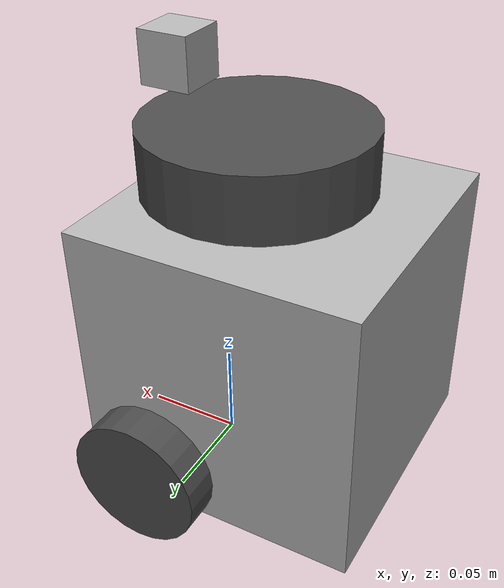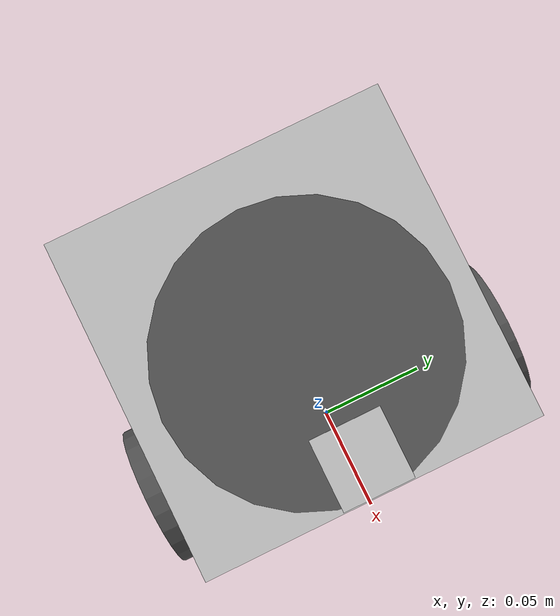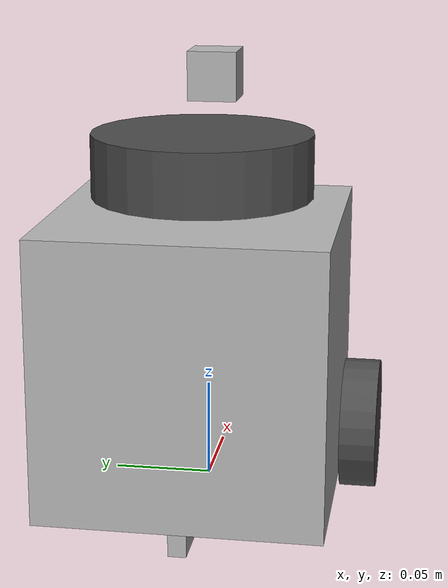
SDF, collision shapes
<?xml version="1.0" ?>
<sdf version="1.7">

    <model name="Turtlebot3_Burger" canonical_link='base_footprint'>

        <pose>0 0 0.01 0 0 0</pose>

        <link name="base_footprint"/>

        <joint name="base_joint" type="fixed">
            <parent>base_footprint</parent>
            <child>base_link</child>
            <pose>0.0 0.0 0.010 0 0 0</pose>
        </joint>

        <link name="base_link">
            <inertial>
                <pose>-0.032 0 0.070 0 0 0</pose>
                <inertia>
                <ixx>2.2124416e-03</ixx>
                <ixy>-1.2294101e-05</ixy>
                <ixz>3.4938785e-05</ixz>
                <iyy>2.1193702e-03</iyy>
                <iyz>-5.0120904e-06</iyz>
                <izz>2.0064271e-03</izz>
                </inertia>
                <mass>8.2573504e-01</mass>
            </inertial>

            <collision name="base_collision">
                <pose>-0.032 0 0.070 0 0 0</pose>
                <geometry>
                <box>
                    <size>0.140 0.140 0.140</size>
                </box>
                </geometry>
            </collision>

            <visual name="base_visual">
                <pose>-0.032 0 0 0 0 0</pose>
                <geometry>
                <mesh>
                    <uri>meshes/burger_base.dae</uri>
                    <scale>0.001 0.001 0.001</scale>
                </mesh>
                <material>
                    <ambient>0.0 0.4 0.0 1.0</ambient>
                    <diffuse>0.0 0.4 0.0 1.0</diffuse>
                    <specular>0.0 0.4 0.0 1.0</specular>
                </material>
                </geometry>
            </visual>
        </link>

        <joint name="wheel_left_joint" type="revolute">
            <parent>base_link</parent>
            <child>wheel_left_link</child>
            <pose>0 0.08 0.023 -1.57 0 0</pose>
            <axis>
                <xyz expressed_in='__model__'>0 1 0</xyz> <!--can be defined as any frame or even arbitrary frames-->
            </axis>
        </joint>

        <link name="wheel_left_link">
            <inertial>
                <pose>0 0.08 0.023 -1.57 0 0</pose>
                <inertia>
                    <ixx>1.1175580e-05</ixx>
                    <ixy>-4.2369783e-11</ixy>
                    <ixz>-5.9381719e-09</ixz>
                    <iyy>1.1192413e-05</iyy>
                    <iyz>-1.4400107e-11</iyz>
                    <izz>2.0712558e-05</izz>
                </inertia>
                <mass>2.8498940e-02</mass>
            </inertial>

            <collision name="wheel_left_collision">
                <pose>0 0.08 0.023 -1.57 0 0</pose>
                <geometry>
                <cylinder>
                    <radius>0.033</radius>
                    <length>0.018</length>
                </cylinder>
                </geometry>
                <surface>
                <!-- This friction pamareter don't contain reliable data!! -->
                    <friction>
                    <ode>
                        <mu>100000.0</mu>
                        <mu2>100000.0</mu2>
                        <fdir1>0 0 0</fdir1>
                        <slip1>0.0</slip1>
                        <slip2>0.0</slip2>
                    </ode>
                </friction>
                </surface>
            </collision>

            <visual name="wheel_left_visual">
                <pose>0 0.08 0.023 0 0 0</pose>
                <geometry>
                    <mesh>
                        <uri>meshes/left_tire.dae</uri>
                        <scale>0.001 0.001 0.001</scale>
                    </mesh>
                </geometry>
                <material>
                    <ambient>0.3 0.3 0.3 1.0</ambient>
                    <diffuse>0.3 0.3 0.3 1.0</diffuse>
                    <specular>0.3 0.3 0.3 1.0</specular>
                </material>
            </visual>
        </link>

        <joint name="wheel_right_joint" type='revolute'>
            <parent>base_link</parent>
            <child>wheel_right_link</child>
            <pose>0.0 -0.08 0.023 -1.57 0 0</pose>
            <axis>
                <xyz expressed_in='__model__'>0 1 0</xyz> <!--can be defined as any frame or even arbitrary frames-->
                <limit>
                    <lower>-1.79769e+308</lower>    <!--negative infinity-->
                    <upper>1.79769e+308</upper>     <!--positive infinity-->
                </limit>
            </axis>
        </joint>

        <link name="wheel_right_link">
            <inertial>
                <pose>0.0 -0.08 0.023 -1.57 0 0</pose>
                <inertia>
                    <ixx>1.1175580e-05</ixx>
                    <ixy>-4.2369783e-11</ixy>
                    <ixz>-5.9381719e-09</ixz>
                    <iyy>1.1192413e-05</iyy>
                    <iyz>-1.4400107e-11</iyz>
                    <izz>2.0712558e-05</izz>
                </inertia>
                <mass>2.8498940e-02</mass>
            </inertial>

            <collision name="wheel_right_collision">
                <pose>0.0 -0.08 0.023 -1.57 0 0</pose>
                <geometry>
                    <cylinder>
                        <radius>0.033</radius>
                        <length>0.018</length>
                    </cylinder>
                </geometry>
                <surface>
                <!-- This friction pamareter don't contain reliable data!! -->
                    <friction>
                    <ode>
                        <mu>100000.0</mu>
                        <mu2>100000.0</mu2>
                        <fdir1>0 0 0</fdir1>
                        <slip1>0.0</slip1>
                        <slip2>0.0</slip2>
                    </ode>
                </friction>
                </surface>
            </collision>

            <visual name="wheel_right_visual">
                <pose>0.0 -0.08 0.023 0 0 0</pose>
                <geometry>
                    <mesh>
                        <uri>meshes/right_tire.dae</uri>
                        <scale>0.001 0.001 0.001</scale>
                    </mesh>
                </geometry>
                <material>
                    <ambient>0.3 0.3 0.3 1.0</ambient>
                    <diffuse>0.3 0.3 0.3 1.0</diffuse>
                    <specular>0.3 0.3 0.3 1.0</specular>
                </material>
            </visual>
        </link>

        <joint name="caster_back_joint" type="fixed">
            <parent>base_link</parent>
            <child>caster_back_link</child>
            <pose>-0.081 0 -0.004 -1.57 0 0</pose>
        </joint>

        <link name="caster_back_link">
            <inertial>
                <pose>-0.081 0 -0.004 0 0 0</pose>
                <inertia>
                <ixx>0.001</ixx>
                <ixy>0.0</ixy>
                <ixz>0.0</ixz>
                <iyy>0.001</iyy>
                <iyz>0.0</iyz>
                <izz>0.001</izz>
                </inertia>
                <mass>0.005</mass>
            </inertial>

            <collision name="caster_back_collision">
                <pose>-0.081 0 -0.004 0 0 0</pose>
                <geometry>
                <box>
                    <size>0.030 0.009 0.020</size>
                </box>
                </geometry>
            </collision>
        </link>

        <joint name="imu_joint" type="fixed">
            <parent>base_link</parent>
            <child>imu_link</child>
            <pose>-0.032 0 0.068 0 0 0</pose>
        </joint>

        <link name="imu_link">
        </link>

        <joint name="scan_joint" type="fixed">
            <parent>base_link</parent>
            <child>base_scan</child>
            <pose>-0.032 0 0.171 0 0 0</pose>
        </joint>

        <link name="base_scan">
            <inertial>
                <pose>-0.020 0 0.161 0 0 0</pose>
                <inertia>
                <ixx>0.001</ixx>
                <ixy>0.000</ixy>
                <ixz>0.000</ixz>
                <iyy>0.001</iyy>
                <iyz>0.000</iyz>
                <izz>0.001</izz>
                </inertia>
                <mass>0.114</mass>
            </inertial>

            <collision name="base_scan_collision">
                <pose>-0.020 0 0.161 0 0 0</pose>
                <geometry>
                <cylinder>
                    <radius>0.055</radius>
                    <length>0.0315</length>
                </cylinder>
                </geometry>
            </collision>

            <visual name="base_scan_visual">
                <pose>-0.032 0 0.171 0 0 0</pose>
                <geometry>
                <mesh>
                    <uri>meshes/lds.dae</uri>
                    <scale>0.001 0.001 0.001</scale>
                </mesh>
                </geometry>
                <material>
                <ambient>0.3 0.3 0.3 1.0</ambient>
                <diffuse>0.3 0.3 0.3 1.0</diffuse>
                <specular>0.3 0.3 0.3 1.0</specular>
                </material>
            </visual>

        </link>

        <joint name="thermal_camera_joint" type="fixed">
            <parent>base_link</parent>
            <child>thermal_camera_link</child>
            <pose>0.032 0 0.2 0 0 0</pose>
        </joint>

        <link name="thermal_camera_link">
            <inertial>
                <pose>0.020 0 0.181 0 0 0</pose>
                <inertia>
                <ixx>0.001</ixx>
                <ixy>0.000</ixy>
                <ixz>0.000</ixz>
                <iyy>0.001</iyy>
                <iyz>0.000</iyz>
                <izz>0.001</izz>
                </inertia>
                <mass>0.114</mass>
            </inertial>
            <collision name="thermal_camera_collision">
                <pose>0.020 0 0.2 0 0 0</pose>
                <geometry>
                    <box>
                        <size>0.025 0.025 0.025</size>
                    </box>
                </geometry>
            </collision>
            <visual name="thermal_camera_visual">
                <pose>0.032 0 0.2 0 0 0</pose>
                <geometry>
                    <box>
                        <size>0.025 0.025 0.025</size>
                    </box>
                </geometry>
            </visual>
            <sensor name="thermal_camera_sensor" type="thermal">
                <camera>
                  <horizontal_fov>2.0472</horizontal_fov>
                  <image>
                    <width>320</width>
                    <height>240</height>
                    <format>L16</format>
                  </image>
                  <clip>
                    <near>0.1</near>
                    <far>100</far>
                  </clip>
                </camera>
                <always_on>1</always_on>
                <update_rate>30</update_rate>
                <visualize>false</visualize>
                <topic>thermal_camera</topic>
                <plugin
                    filename="ignition-gazebo-thermal-sensor-system"
                    name="ignition::gazebo::systems::ThermalSensor">
                    <min_temp>253.15</min_temp>
                    <max_temp>673.15</max_temp>
                    <resolution>3.0</resolution>
                </plugin>
            </sensor>
        </link>

        <plugin
        filename="ignition-gazebo-diff-drive-system"
        name="ignition::gazebo::systems::DiffDrive">
            <left_joint>wheel_left_joint</left_joint>
            <right_joint>wheel_right_joint</right_joint>
            <wheel_separation>0.16</wheel_separation>
            <wheel_radius>0.033</wheel_radius>
            <odom_publish_frequency>40</odom_publish_frequency>
            <topic>cmd_vel</topic>
            <odom_topic>odom</odom_topic>
            <tf_topic>tf</tf_topic>
            <frame_id>odom</frame_id>
            <child_frame_id>base_footprint</child_frame_id>
        </plugin>

    </model>
</sdf>
